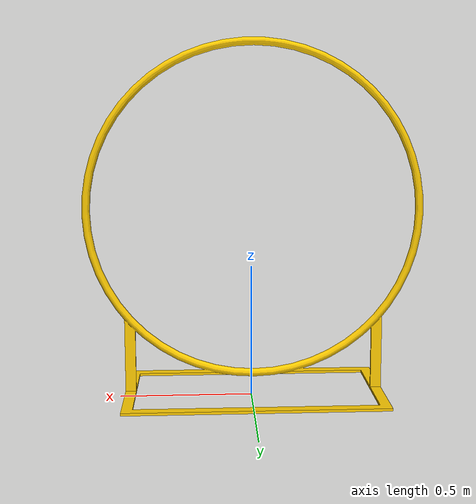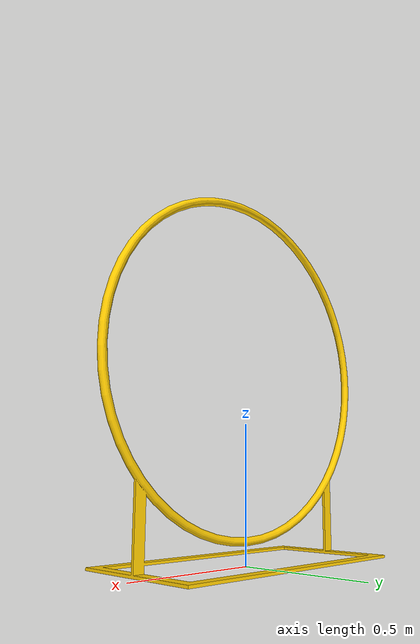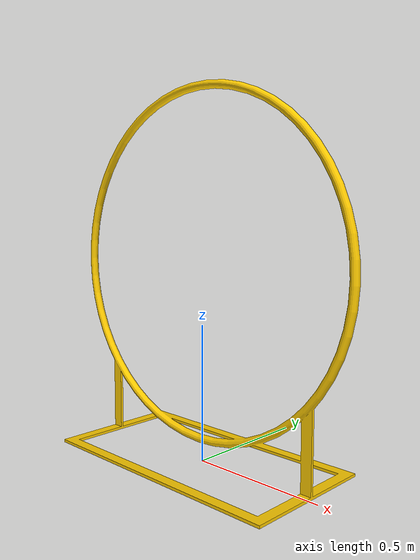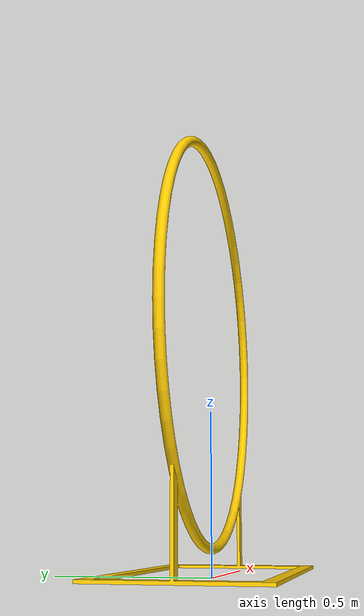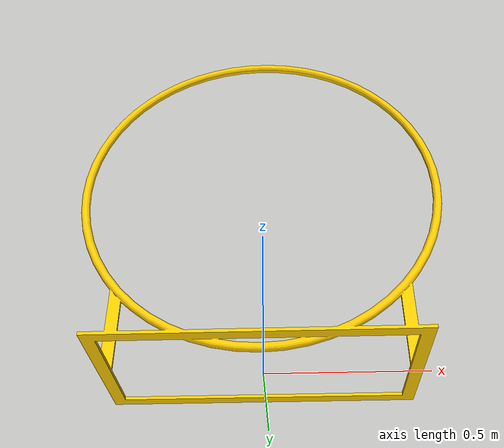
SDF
<?xml version="1.0" ?>
<sdf version="1.7">
  <model name="small_circle">
    <static>true</static>
    <link name="link">
      <collision name="small_circle_col">
        <pose>0 0 0 0 0 0</pose>
        <geometry>
          <mesh>
            <uri>models://small_circle/small_circle.dae</uri>
          </mesh>
        </geometry>
      </collision>
      <visual name="pool_visual">
        <pose>0 0 0 0 0 0</pose>
        <geometry>
          <mesh>
            <uri>models://small_circle/small_circle.dae</uri>
          </mesh>
        </geometry>
        <material>
          <ambient>1 0.8 0 1</ambient>
          <diffuse>1 0.8 0 1</diffuse>
          <specular>0.1 0.1 0.1 1</specular>
          <emissive>1 0.8 0 1</emissive>
        </material>
      </visual>
    </link>
  </model>
</sdf>
